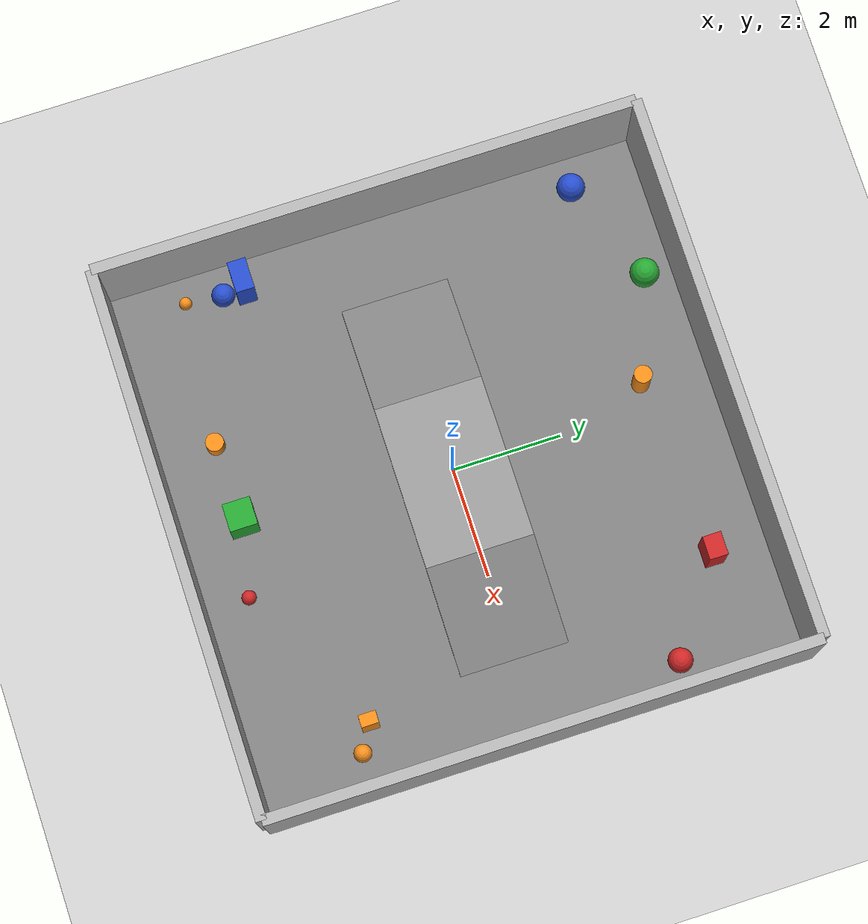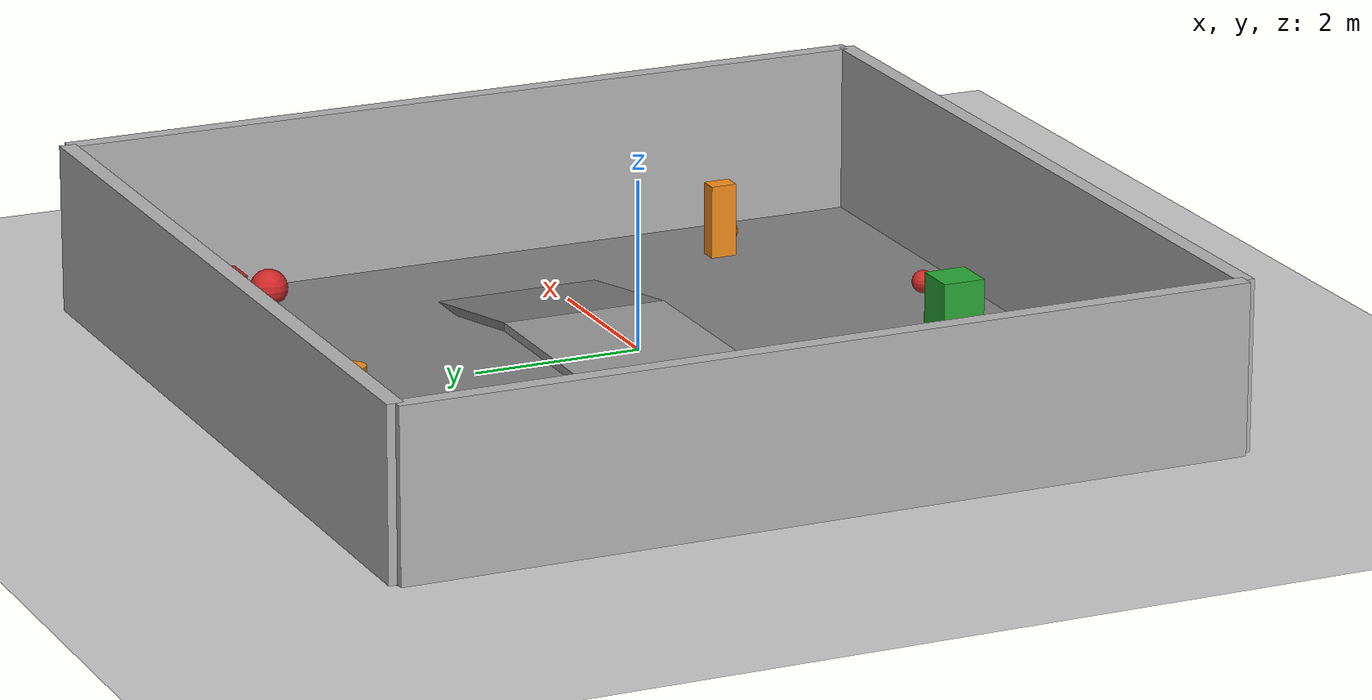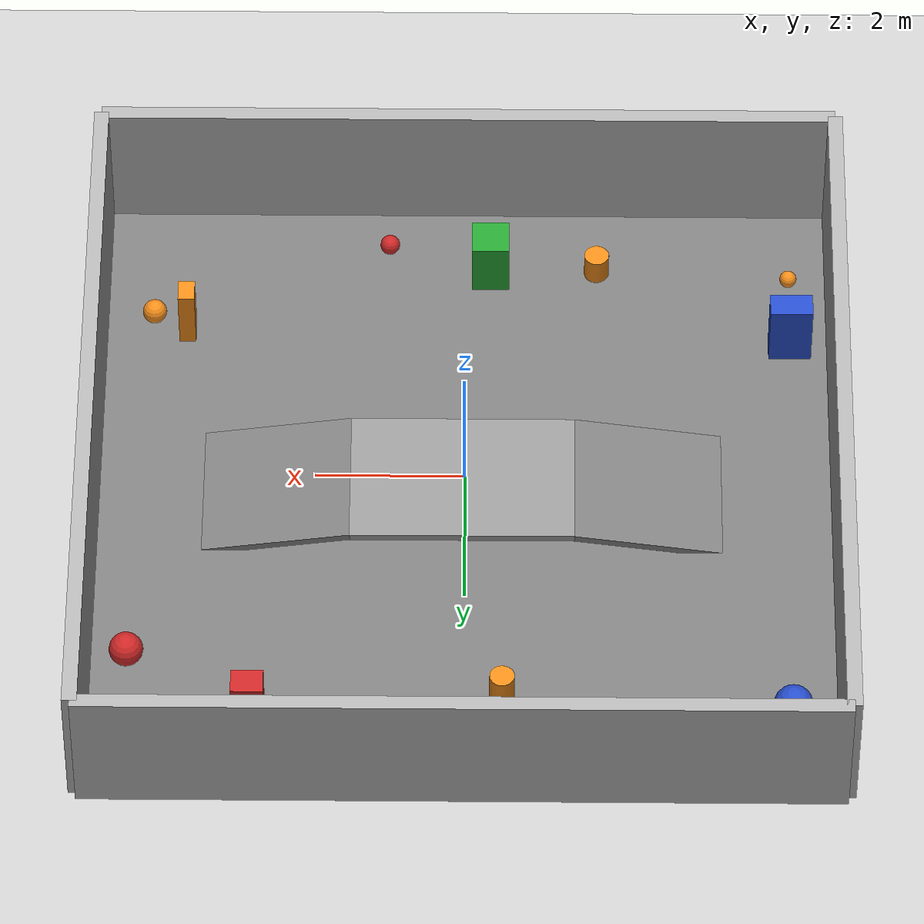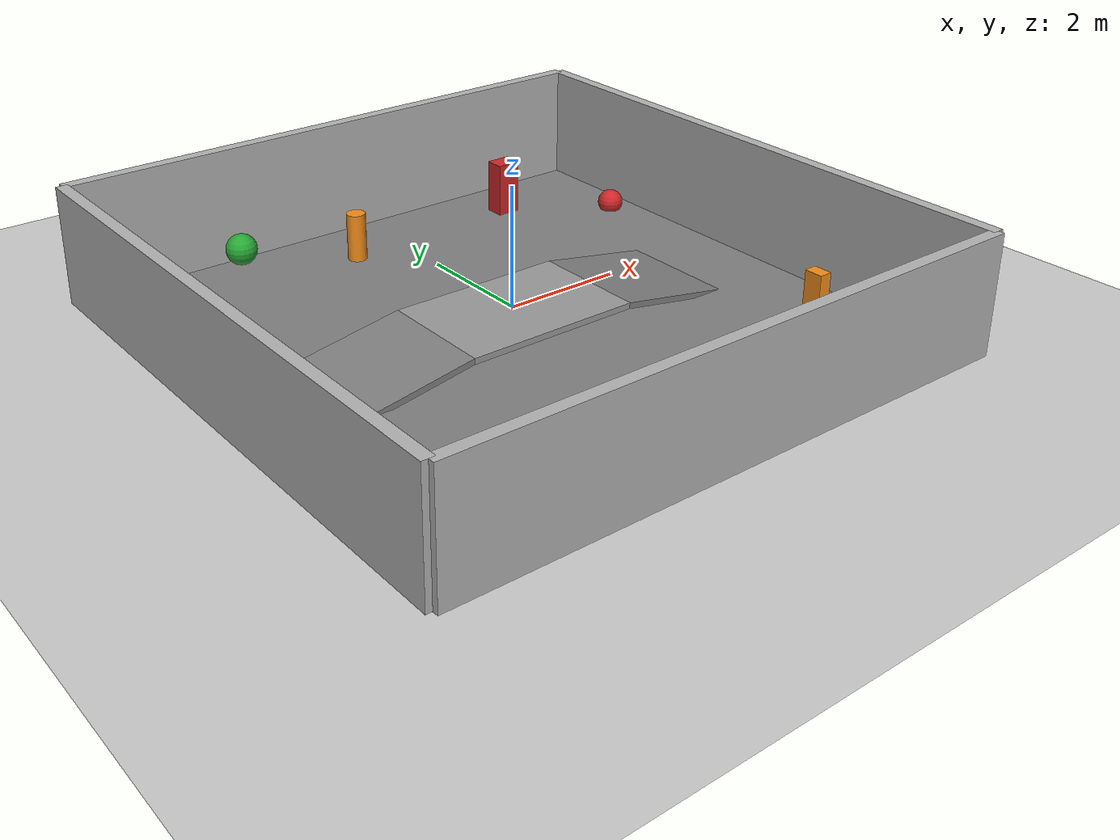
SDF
<sdf version="1.9">
  <world name="uneven_terrain">
    <physics name="1ms" type="ode">
      <max_step_size>0.001</max_step_size>
      <real_time_factor>1</real_time_factor>
      <real_time_update_rate>1000</real_time_update_rate>
    </physics>
    <plugin name="ignition::gazebo::systems::Physics" filename="libignition-gazebo-physics-system.so" />
    <plugin name="ignition::gazebo::systems::UserCommands" filename="libignition-gazebo-user-commands-system.so" />
    <plugin name="ignition::gazebo::systems::SceneBroadcaster" filename="libignition-gazebo-scene-broadcaster-system.so" />
    <plugin name="ignition::gazebo::systems::Sensors" filename="libignition-gazebo-sensors-system.so" />
    <plugin name="ignition::gazebo::systems::Imu" filename="libignition-gazebo-imu-system.so" />
    <gravity>0 0 -9.8</gravity>
    <magnetic_field>6e-06 2.3e-05 -4.2e-05</magnetic_field>
    <atmosphere type="adiabatic" />
    <scene>
      <ambient>0.4 0.4 0.4 1</ambient>
      <background>0.7 0.7 0.7 1</background>
      <shadows>true</shadows>
    </scene>
    <model name="ground_mesh_model">
      <static>true</static>
      <link name="link">
        <collision name="collision">
          <geometry>
            <box>
              <size>10 10 0.1</size>
            </box>
          </geometry>
        </collision>
        <visual name="visual">
          <geometry>
            <box>
              <size>10 10 0.1</size>
            </box>
          </geometry>
          <material>
            <ambient>0.5 0.5 0.5 1</ambient>
            <diffuse>0.5 0.5 0.5 1</diffuse>
          </material>
        </visual>
      </link>
      <pose>0.000000 0.000000 -0.390000 0.000000 0.000000 0.000000</pose>
    </model>
    <model name="ground_plane">
      <static>true</static>
      <link name="link">
        <collision name="collision">
          <geometry>
            <plane>
              <normal>0 0 1</normal>
              <size>100 100</size>
            </plane>
          </geometry>
          <surface>
            <friction>
              <ode>
                <mu>100</mu>
                <mu2>50</mu2>
              </ode>
            </friction>
            <bounce />
            <contact />
          </surface>
        </collision>
        <visual name="visual">
          <geometry>
            <plane>
              <normal>0 0 1</normal>
              <size>10 10</size>
            </plane>
          </geometry>
          <material>
            <ambient>0.8 0.8 0.8 1</ambient>
            <diffuse>0.8 0.8 0.8 1</diffuse>
            <specular>0.8 0.8 0.8 1</specular>
          </material>
        </visual>
        <pose>0 0 0 0 -0 0</pose>
        <inertial>
          <pose>0 0 0 0 -0 0</pose>
          <mass>1</mass>
          <inertia>
            <ixx>1</ixx>
            <ixy>0</ixy>
            <ixz>0</ixz>
            <iyy>1</iyy>
            <iyz>0</iyz>
            <izz>1</izz>
          </inertia>
        </inertial>
        <enable_wind>false</enable_wind>
      </link>
      <pose>0.000000 0.000000 -0.340000 0.000000 -0.000000 0.000000</pose>
      <self_collide>false</self_collide>
    </model>
    <model name="wall_north">
      <static>true</static>
      <pose>0.000000 5.000000 0.660000 0.000000 -0.000000 0.000000</pose>
      <link name="link">
        <collision name="collision">
          <geometry>
            <box>
              <size>10 0.2 2</size>
            </box>
          </geometry>
          <surface>
            <friction>
              <ode />
            </friction>
            <bounce />
            <contact />
          </surface>
        </collision>
        <visual name="visual">
          <geometry>
            <box>
              <size>10 0.2 2</size>
            </box>
          </geometry>
          <material>
            <ambient>0.7 0.7 0.7 1</ambient>
          </material>
        </visual>
        <pose>0 0 0 0 -0 0</pose>
        <inertial>
          <pose>0 0 0 0 -0 0</pose>
          <mass>1</mass>
          <inertia>
            <ixx>1</ixx>
            <ixy>0</ixy>
            <ixz>0</ixz>
            <iyy>1</iyy>
            <iyz>0</iyz>
            <izz>1</izz>
          </inertia>
        </inertial>
        <enable_wind>false</enable_wind>
      </link>
      <self_collide>false</self_collide>
    </model>
    <model name="wall_south">
      <static>true</static>
      <pose>0.000000 -5.000000 0.660000 0.000000 -0.000000 0.000000</pose>
      <link name="link">
        <collision name="collision">
          <geometry>
            <box>
              <size>10 0.2 2</size>
            </box>
          </geometry>
          <surface>
            <friction>
              <ode />
            </friction>
            <bounce />
            <contact />
          </surface>
        </collision>
        <visual name="visual">
          <geometry>
            <box>
              <size>10 0.2 2</size>
            </box>
          </geometry>
          <material>
            <ambient>0.7 0.7 0.7 1</ambient>
          </material>
        </visual>
        <pose>0 0 0 0 -0 0</pose>
        <inertial>
          <pose>0 0 0 0 -0 0</pose>
          <mass>1</mass>
          <inertia>
            <ixx>1</ixx>
            <ixy>0</ixy>
            <ixz>0</ixz>
            <iyy>1</iyy>
            <iyz>0</iyz>
            <izz>1</izz>
          </inertia>
        </inertial>
        <enable_wind>false</enable_wind>
      </link>
      <self_collide>false</self_collide>
    </model>
    <model name="wall_east">
      <static>true</static>
      <pose>5.000000 0.000000 0.660000 0.000000 -0.000000 0.000000</pose>
      <link name="link">
        <collision name="collision">
          <geometry>
            <box>
              <size>0.2 10 2</size>
            </box>
          </geometry>
          <surface>
            <friction>
              <ode />
            </friction>
            <bounce />
            <contact />
          </surface>
        </collision>
        <visual name="visual">
          <geometry>
            <box>
              <size>0.2 10 2</size>
            </box>
          </geometry>
          <material>
            <ambient>0.7 0.7 0.7 1</ambient>
          </material>
        </visual>
        <pose>0 0 0 0 -0 0</pose>
        <inertial>
          <pose>0 0 0 0 -0 0</pose>
          <mass>1</mass>
          <inertia>
            <ixx>1</ixx>
            <ixy>0</ixy>
            <ixz>0</ixz>
            <iyy>1</iyy>
            <iyz>0</iyz>
            <izz>1</izz>
          </inertia>
        </inertial>
        <enable_wind>false</enable_wind>
      </link>
      <self_collide>false</self_collide>
    </model>
    <model name="wall_west">
      <static>true</static>
      <pose>-5.000000 0.000000 0.660000 0.000000 -0.000000 0.000000</pose>
      <link name="link">
        <collision name="collision">
          <geometry>
            <box>
              <size>0.2 10 2</size>
            </box>
          </geometry>
          <surface>
            <friction>
              <ode />
            </friction>
            <bounce />
            <contact />
          </surface>
        </collision>
        <visual name="visual">
          <geometry>
            <box>
              <size>0.2 10 2</size>
            </box>
          </geometry>
          <material>
            <ambient>0.7 0.7 0.7 1</ambient>
          </material>
        </visual>
        <pose>0 0 0 0 -0 0</pose>
        <inertial>
          <pose>0 0 0 0 -0 0</pose>
          <mass>1</mass>
          <inertia>
            <ixx>1</ixx>
            <ixy>0</ixy>
            <ixz>0</ixz>
            <iyy>1</iyy>
            <iyz>0</iyz>
            <izz>1</izz>
          </inertia>
        </inertial>
        <enable_wind>false</enable_wind>
      </link>
      <self_collide>false</self_collide>
    </model>
    <model name="ramp_1">
      <static>true</static>
      <pose>-2.440250 0.000000 -0.218462 0.000000 -0.170000 0.000000</pose>
      <link name="link">
        <collision name="collision">
          <geometry>
            <box>
              <size>2 2 0.1</size>
            </box>
          </geometry>
          <surface>
            <friction>
              <ode />
            </friction>
            <bounce />
            <contact />
          </surface>
        </collision>
        <visual name="visual">
          <geometry>
            <box>
              <size>2 2 0.1</size>
            </box>
          </geometry>
          <material>
            <ambient>0.5 0.5 0.5 1</ambient>
          </material>
        </visual>
        <pose>0 0 0 0 -0 0</pose>
        <inertial>
          <pose>0 0 0 0 -0 0</pose>
          <mass>1</mass>
          <inertia>
            <ixx>1</ixx>
            <ixy>0</ixy>
            <ixz>0</ixz>
            <iyy>1</iyy>
            <iyz>0</iyz>
            <izz>1</izz>
          </inertia>
        </inertial>
        <enable_wind>false</enable_wind>
      </link>
      <self_collide>false</self_collide>
    </model>
    <model name="platform_1">
      <static>true</static>
      <pose>0.036876 0.000000 -0.050000 0.000000 -0.000000 0.000000</pose>
      <link name="link">
        <collision name="collision">
          <geometry>
            <box>
              <size>3 2 0.1</size>
            </box>
          </geometry>
          <surface>
            <friction>
              <ode />
            </friction>
            <bounce />
            <contact />
          </surface>
        </collision>
        <visual name="visual">
          <geometry>
            <box>
              <size>3 2 0.1</size>
            </box>
          </geometry>
          <material>
            <ambient>0.6 0.6 0.6 1</ambient>
          </material>
        </visual>
        <pose>0 0 0 0 -0 0</pose>
        <inertial>
          <pose>0 0 0 0 -0 0</pose>
          <mass>1</mass>
          <inertia>
            <ixx>1</ixx>
            <ixy>0</ixy>
            <ixz>0</ixz>
            <iyy>1</iyy>
            <iyz>0</iyz>
            <izz>1</izz>
          </inertia>
        </inertial>
        <enable_wind>false</enable_wind>
      </link>
      <self_collide>false</self_collide>
    </model>
    <model name="ramp_2">
      <static>true</static>
      <pose>2.514002 0.000000 -0.218462 0.000000 0.170000 0.000000</pose>
      <link name="link">
        <collision name="collision">
          <geometry>
            <box>
              <size>2 2 0.1</size>
            </box>
          </geometry>
          <surface>
            <friction>
              <ode />
            </friction>
            <bounce />
            <contact />
          </surface>
        </collision>
        <visual name="visual">
          <geometry>
            <box>
              <size>2 2 0.1</size>
            </box>
          </geometry>
          <material>
            <ambient>0.5 0.5 0.5 1</ambient>
          </material>
        </visual>
        <pose>0 0 0 0 -0 0</pose>
        <inertial>
          <pose>0 0 0 0 -0 0</pose>
          <mass>1</mass>
          <inertia>
            <ixx>1</ixx>
            <ixy>0</ixy>
            <ixz>0</ixz>
            <iyy>1</iyy>
            <iyz>0</iyz>
            <izz>1</izz>
          </inertia>
        </inertial>
        <enable_wind>false</enable_wind>
      </link>
      <self_collide>false</self_collide>
    </model>
    <model name="obstacle_0_box">
      <pose>-0.316374 -3.821690 0.066707 0.000000 -0.000000 0.000000</pose>
      <static>true</static>
      <link name="link">
        <collision name="collision">
          <geometry>
            <box>
              <size>0.509259 0.50741 0.813414</size>
            </box>
          </geometry>
          <surface>
            <friction>
              <ode />
            </friction>
            <bounce />
            <contact />
          </surface>
        </collision>
        <visual name="visual">
          <geometry>
            <box>
              <size>0.509259 0.50741 0.813414</size>
            </box>
          </geometry>
          <material>
            <script>
              <uri>file://media/materials/scripts/gazebo.material</uri>
              <name>Gazebo/Green</name>
            </script>
          </material>
        </visual>
        <pose>0 0 0 0 -0 0</pose>
        <inertial>
          <pose>0 0 0 0 -0 0</pose>
          <mass>1</mass>
          <inertia>
            <ixx>1</ixx>
            <ixy>0</ixy>
            <ixz>0</ixz>
            <iyy>1</iyy>
            <iyz>0</iyz>
            <izz>1</izz>
          </inertia>
        </inertial>
        <enable_wind>false</enable_wind>
      </link>
      <self_collide>false</self_collide>
    </model>
    <model name="obstacle_1_sphere">
      <pose>4.432210 2.758600 -0.213304 0.000000 -0.000000 0.000000</pose>
      <static>true</static>
      <link name="link">
        <collision name="collision">
          <geometry>
            <sphere>
              <radius>0.22672937078829539</radius>
            </sphere>
          </geometry>
          <surface>
            <friction>
              <ode />
            </friction>
            <bounce />
            <contact />
          </surface>
        </collision>
        <visual name="visual">
          <geometry>
            <sphere>
              <radius>0.22672937078829539</radius>
            </sphere>
          </geometry>
          <material>
            <script>
              <uri>file://media/materials/scripts/gazebo.material</uri>
              <name>Gazebo/Red</name>
            </script>
          </material>
        </visual>
        <pose>0 0 0 0 -0 0</pose>
        <inertial>
          <pose>0 0 0 0 -0 0</pose>
          <mass>1</mass>
          <inertia>
            <ixx>1</ixx>
            <ixy>0</ixy>
            <ixz>0</ixz>
            <iyy>1</iyy>
            <iyz>0</iyz>
            <izz>1</izz>
          </inertia>
        </inertial>
        <enable_wind>false</enable_wind>
      </link>
      <self_collide>false</self_collide>
    </model>
    <model name="obstacle_5_cylinder">
      <pose>-0.509910 3.690790 0.077246 0.000000 -0.000000 0.000000</pose>
      <static>true</static>
      <link name="link">
        <collision name="collision">
          <geometry>
            <cylinder>
              <radius>0.16293335119398417</radius>
              <length>0.83449224172583136</length>
            </cylinder>
          </geometry>
          <surface>
            <friction>
              <ode />
            </friction>
            <bounce />
            <contact />
          </surface>
        </collision>
        <visual name="visual">
          <geometry>
            <cylinder>
              <radius>0.16293335119398417</radius>
              <length>0.83449224172583136</length>
            </cylinder>
          </geometry>
          <material>
            <script>
              <uri>file://media/materials/scripts/gazebo.material</uri>
              <name>Gazebo/Orange</name>
            </script>
          </material>
        </visual>
        <pose>0 0 0 0 -0 0</pose>
        <inertial>
          <pose>0 0 0 0 -0 0</pose>
          <mass>1</mass>
          <inertia>
            <ixx>1</ixx>
            <ixy>0</ixy>
            <ixz>0</ixz>
            <iyy>1</iyy>
            <iyz>0</iyz>
            <izz>1</izz>
          </inertia>
        </inertial>
        <enable_wind>false</enable_wind>
      </link>
      <self_collide>false</self_collide>
    </model>
    <model name="obstacle_6_sphere">
      <pose>-4.313780 3.636620 -0.151506 0.000000 -0.000000 0.000000</pose>
      <static>true</static>
      <link name="link">
        <collision name="collision">
          <geometry>
            <sphere>
              <radius>0.25960404889656696</radius>
            </sphere>
          </geometry>
          <surface>
            <friction>
              <ode />
            </friction>
            <bounce />
            <contact />
          </surface>
        </collision>
        <visual name="visual">
          <geometry>
            <sphere>
              <radius>0.25960404889656696</radius>
            </sphere>
          </geometry>
          <material>
            <script>
              <uri>file://media/materials/scripts/gazebo.material</uri>
              <name>Gazebo/Blue</name>
            </script>
          </material>
        </visual>
        <pose>0 0 0 0 -0 0</pose>
        <inertial>
          <pose>0 0 0 0 -0 0</pose>
          <mass>1</mass>
          <inertia>
            <ixx>1</ixx>
            <ixy>0</ixy>
            <ixz>0</ixz>
            <iyy>1</iyy>
            <iyz>0</iyz>
            <izz>1</izz>
          </inertia>
        </inertial>
        <enable_wind>false</enable_wind>
      </link>
      <self_collide>false</self_collide>
    </model>
    <model name="obstacle_7_box">
      <pose>3.804960 -2.770050 0.103938 0.000000 -0.000000 0.000000</pose>
      <static>true</static>
      <link name="link">
        <collision name="collision">
          <geometry>
            <box>
              <size>0.222618 0.317194 0.887876</size>
            </box>
          </geometry>
          <surface>
            <friction>
              <ode />
            </friction>
            <bounce />
            <contact />
          </surface>
        </collision>
        <visual name="visual">
          <geometry>
            <box>
              <size>0.222618 0.317194 0.887876</size>
            </box>
          </geometry>
          <material>
            <script>
              <uri>file://media/materials/scripts/gazebo.material</uri>
              <name>Gazebo/Orange</name>
            </script>
          </material>
        </visual>
        <pose>0 0 0 0 -0 0</pose>
        <inertial>
          <pose>0 0 0 0 -0 0</pose>
          <mass>1</mass>
          <inertia>
            <ixx>1</ixx>
            <ixy>0</ixy>
            <ixz>0</ixz>
            <iyy>1</iyy>
            <iyz>0</iyz>
            <izz>1</izz>
          </inertia>
        </inertial>
        <enable_wind>false</enable_wind>
      </link>
      <self_collide>false</self_collide>
    </model>
    <model name="obstacle_10_sphere">
      <pose>1.063370 -4.113200 -0.046010 0.000000 -0.000000 0.000000</pose>
      <static>true</static>
      <link name="link">
        <collision name="collision">
          <geometry>
            <sphere>
              <radius>0.13375255100409827</radius>
            </sphere>
          </geometry>
          <surface>
            <friction>
              <ode />
            </friction>
            <bounce />
            <contact />
          </surface>
        </collision>
        <visual name="visual">
          <geometry>
            <sphere>
              <radius>0.13375255100409827</radius>
            </sphere>
          </geometry>
          <material>
            <script>
              <uri>file://media/materials/scripts/gazebo.material</uri>
              <name>Gazebo/Red</name>
            </script>
          </material>
        </visual>
        <pose>0 0 0 0 -0 0</pose>
        <inertial>
          <pose>0 0 0 0 -0 0</pose>
          <mass>1</mass>
          <inertia>
            <ixx>1</ixx>
            <ixy>0</ixy>
            <ixz>0</ixz>
            <iyy>1</iyy>
            <iyz>0</iyz>
            <izz>1</izz>
          </inertia>
        </inertial>
        <enable_wind>false</enable_wind>
      </link>
      <self_collide>false</self_collide>
    </model>
    <model name="obstacle_11_sphere">
      <pose>-4.394390 -3.622560 -0.145582 0.000000 -0.000000 0.000000</pose>
      <static>true</static>
      <link name="link">
        <collision name="collision">
          <geometry>
            <sphere>
              <radius>0.11515317503726741</radius>
            </sphere>
          </geometry>
          <surface>
            <friction>
              <ode />
            </friction>
            <bounce />
            <contact />
          </surface>
        </collision>
        <visual name="visual">
          <geometry>
            <sphere>
              <radius>0.11515317503726741</radius>
            </sphere>
          </geometry>
          <material>
            <script>
              <uri>file://media/materials/scripts/gazebo.material</uri>
              <name>Gazebo/Orange</name>
            </script>
          </material>
        </visual>
        <pose>0 0 0 0 -0 0</pose>
        <inertial>
          <pose>0 0 0 0 -0 0</pose>
          <mass>1</mass>
          <inertia>
            <ixx>1</ixx>
            <ixy>0</ixy>
            <ixz>0</ixz>
            <iyy>1</iyy>
            <iyz>0</iyz>
            <izz>1</izz>
          </inertia>
        </inertial>
        <enable_wind>false</enable_wind>
      </link>
      <self_collide>false</self_collide>
    </model>
    <model name="obstacle_16_cylinder">
      <pose>-1.771870 -3.871410 -0.149372 0.000000 -0.000000 0.000000</pose>
      <static>true</static>
      <link name="link">
        <collision name="collision">
          <geometry>
            <cylinder>
              <radius>0.16777022098468791</radius>
              <length>0.381256938563938</length>
            </cylinder>
          </geometry>
          <surface>
            <friction>
              <ode />
            </friction>
            <bounce />
            <contact />
          </surface>
        </collision>
        <visual name="visual">
          <geometry>
            <cylinder>
              <radius>0.16777022098468791</radius>
              <length>0.381256938563938</length>
            </cylinder>
          </geometry>
          <material>
            <script>
              <uri>file://media/materials/scripts/gazebo.material</uri>
              <name>Gazebo/Orange</name>
            </script>
          </material>
        </visual>
        <pose>0 0 0 0 -0 0</pose>
        <inertial>
          <pose>0 0 0 0 -0 0</pose>
          <mass>1</mass>
          <inertia>
            <ixx>1</ixx>
            <ixy>0</ixy>
            <ixz>0</ixz>
            <iyy>1</iyy>
            <iyz>0</iyz>
            <izz>1</izz>
          </inertia>
        </inertial>
        <enable_wind>false</enable_wind>
      </link>
      <self_collide>false</self_collide>
    </model>
    <model name="obstacle_21_box">
      <pose>2.795400 3.891600 0.137434 0.000000 -0.000000 0.000000</pose>
      <static>true</static>
      <link name="link">
        <collision name="collision">
          <geometry>
            <box>
              <size>0.424196 0.339412 0.954868</size>
            </box>
          </geometry>
          <surface>
            <friction>
              <ode />
            </friction>
            <bounce />
            <contact />
          </surface>
        </collision>
        <visual name="visual">
          <geometry>
            <box>
              <size>0.424196 0.339412 0.954868</size>
            </box>
          </geometry>
          <material>
            <script>
              <uri>file://media/materials/scripts/gazebo.material</uri>
              <name>Gazebo/Red</name>
            </script>
          </material>
        </visual>
        <pose>0 0 0 0 -0 0</pose>
        <inertial>
          <pose>0 0 0 0 -0 0</pose>
          <mass>1</mass>
          <inertia>
            <ixx>1</ixx>
            <ixy>0</ixy>
            <ixz>0</ixz>
            <iyy>1</iyy>
            <iyz>0</iyz>
            <izz>1</izz>
          </inertia>
        </inertial>
        <enable_wind>false</enable_wind>
      </link>
      <self_collide>false</self_collide>
    </model>
    <model name="obstacle_23_sphere">
      <pose>-2.345550 4.363310 0.087272 0.000000 -0.000000 0.000000</pose>
      <static>true</static>
      <link name="link">
        <collision name="collision">
          <geometry>
            <sphere>
              <radius>0.26701648314304105</radius>
            </sphere>
          </geometry>
          <surface>
            <friction>
              <ode />
            </friction>
            <bounce />
            <contact />
          </surface>
        </collision>
        <visual name="visual">
          <geometry>
            <sphere>
              <radius>0.26701648314304105</radius>
            </sphere>
          </geometry>
          <material>
            <script>
              <uri>file://media/materials/scripts/gazebo.material</uri>
              <name>Gazebo/Green</name>
            </script>
          </material>
        </visual>
        <pose>0 0 0 0 -0 0</pose>
        <inertial>
          <pose>0 0 0 0 -0 0</pose>
          <mass>1</mass>
          <inertia>
            <ixx>1</ixx>
            <ixy>0</ixy>
            <ixz>0</ixz>
            <iyy>1</iyy>
            <iyz>0</iyz>
            <izz>1</izz>
          </inertia>
        </inertial>
        <enable_wind>false</enable_wind>
      </link>
      <self_collide>false</self_collide>
    </model>
    <model name="obstacle_24_sphere">
      <pose>-4.350870 -2.932050 -0.212902 0.000000 -0.000000 0.000000</pose>
      <static>true</static>
      <link name="link">
        <collision name="collision">
          <geometry>
            <sphere>
              <radius>0.2149083668156534</radius>
            </sphere>
          </geometry>
          <surface>
            <friction>
              <ode />
            </friction>
            <bounce />
            <contact />
          </surface>
        </collision>
        <visual name="visual">
          <geometry>
            <sphere>
              <radius>0.2149083668156534</radius>
            </sphere>
          </geometry>
          <material>
            <script>
              <uri>file://media/materials/scripts/gazebo.material</uri>
              <name>Gazebo/Blue</name>
            </script>
          </material>
        </visual>
        <pose>0 0 0 0 -0 0</pose>
        <inertial>
          <pose>0 0 0 0 -0 0</pose>
          <mass>1</mass>
          <inertia>
            <ixx>1</ixx>
            <ixy>0</ixy>
            <ixz>0</ixz>
            <iyy>1</iyy>
            <iyz>0</iyz>
            <izz>1</izz>
          </inertia>
        </inertial>
        <enable_wind>false</enable_wind>
      </link>
      <self_collide>false</self_collide>
    </model>
    <model name="obstacle_25_sphere">
      <pose>4.265800 -3.040100 -0.219802 0.000000 -0.000000 0.000000</pose>
      <static>true</static>
      <link name="link">
        <collision name="collision">
          <geometry>
            <sphere>
              <radius>0.16335643950268666</radius>
            </sphere>
          </geometry>
          <surface>
            <friction>
              <ode />
            </friction>
            <bounce />
            <contact />
          </surface>
        </collision>
        <visual name="visual">
          <geometry>
            <sphere>
              <radius>0.16335643950268666</radius>
            </sphere>
          </geometry>
          <material>
            <script>
              <uri>file://media/materials/scripts/gazebo.material</uri>
              <name>Gazebo/Orange</name>
            </script>
          </material>
        </visual>
        <pose>0 0 0 0 -0 0</pose>
        <inertial>
          <pose>0 0 0 0 -0 0</pose>
          <mass>1</mass>
          <inertia>
            <ixx>1</ixx>
            <ixy>0</ixy>
            <ixz>0</ixz>
            <iyy>1</iyy>
            <iyz>0</iyz>
            <izz>1</izz>
          </inertia>
        </inertial>
        <enable_wind>false</enable_wind>
      </link>
      <self_collide>false</self_collide>
    </model>
    <model name="obstacle_27_box">
      <pose>-4.396430 -2.534550 0.130670 0.000000 -0.000000 0.000000</pose>
      <static>true</static>
      <link name="link">
        <collision name="collision">
          <geometry>
            <box>
              <size>0.57333 0.341095 0.94134</size>
            </box>
          </geometry>
          <surface>
            <friction>
              <ode />
            </friction>
            <bounce />
            <contact />
          </surface>
        </collision>
        <visual name="visual">
          <geometry>
            <box>
              <size>0.57333 0.341095 0.94134</size>
            </box>
          </geometry>
          <material>
            <script>
              <uri>file://media/materials/scripts/gazebo.material</uri>
              <name>Gazebo/Blue</name>
            </script>
          </material>
        </visual>
        <pose>0 0 0 0 -0 0</pose>
        <inertial>
          <pose>0 0 0 0 -0 0</pose>
          <mass>1</mass>
          <inertia>
            <ixx>1</ixx>
            <ixy>0</ixy>
            <ixz>0</ixz>
            <iyy>1</iyy>
            <iyz>0</iyz>
            <izz>1</izz>
          </inertia>
        </inertial>
        <enable_wind>false</enable_wind>
      </link>
      <self_collide>false</self_collide>
    </model>
    <light name="sun" type="directional">
      <pose>0 0 10 0 -0 0</pose>
      <cast_shadows>true</cast_shadows>
      <intensity>1</intensity>
      <direction>-0.5 0.1 -0.9</direction>
      <diffuse>0.8 0.8 0.8 1</diffuse>
      <specular>0.2 0.2 0.2 1</specular>
      <attenuation>
        <range>1000</range>
        <linear>0.01</linear>
        <constant>0.90000000000000002</constant>
        <quadratic>0.001</quadratic>
      </attenuation>
      <spot>
        <inner_angle>0</inner_angle>
        <outer_angle>0</outer_angle>
        <falloff>0</falloff>
      </spot>
    </light>
  </world>
</sdf>
